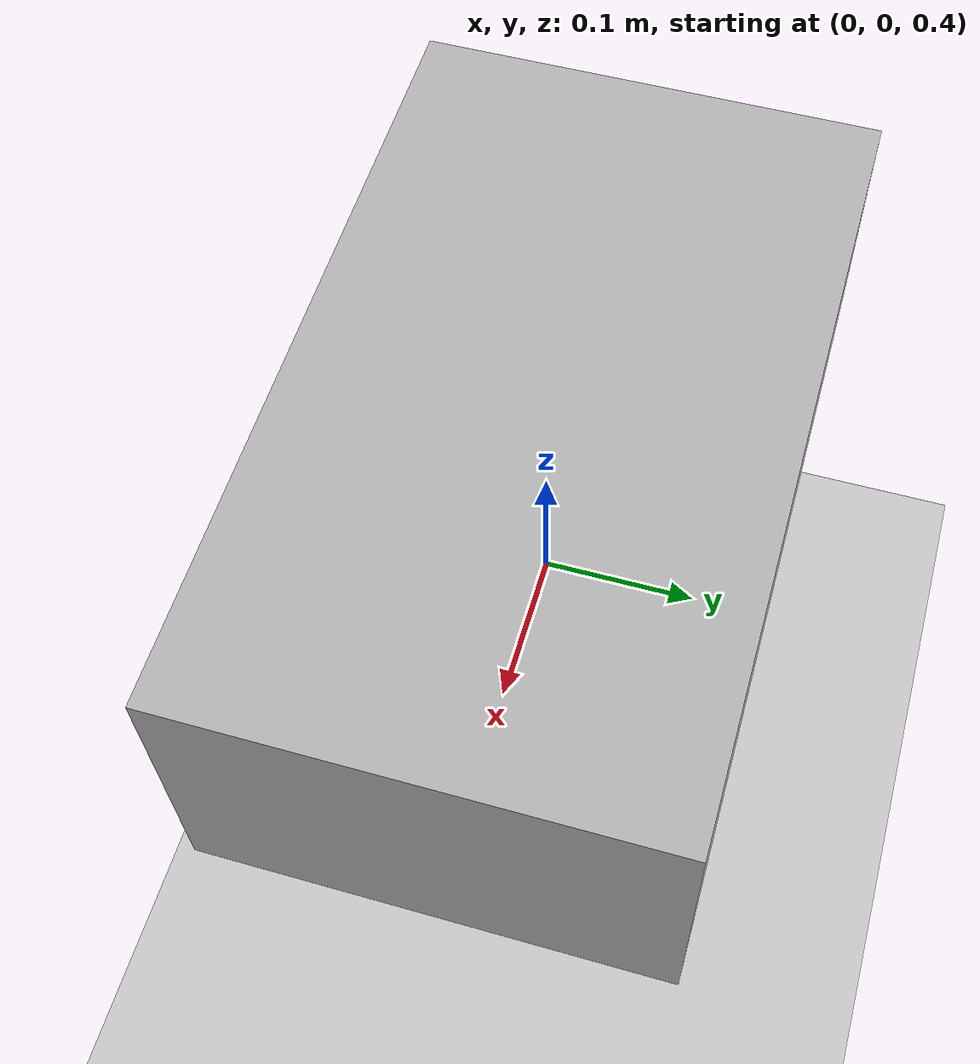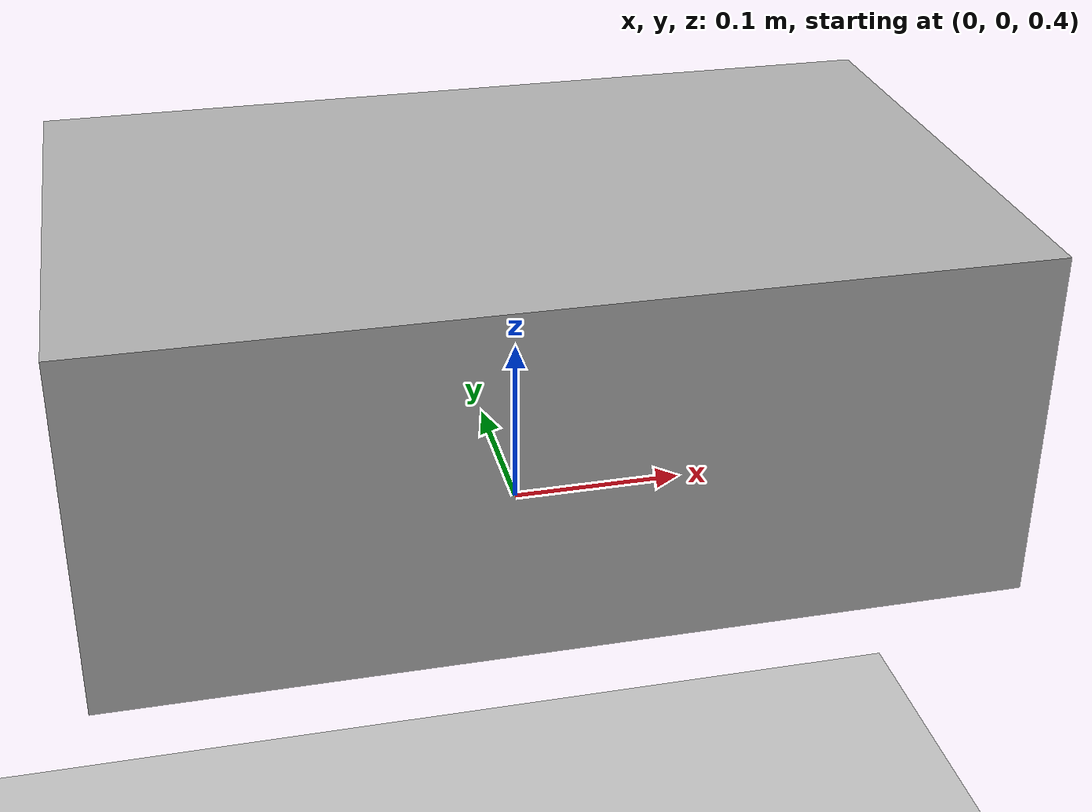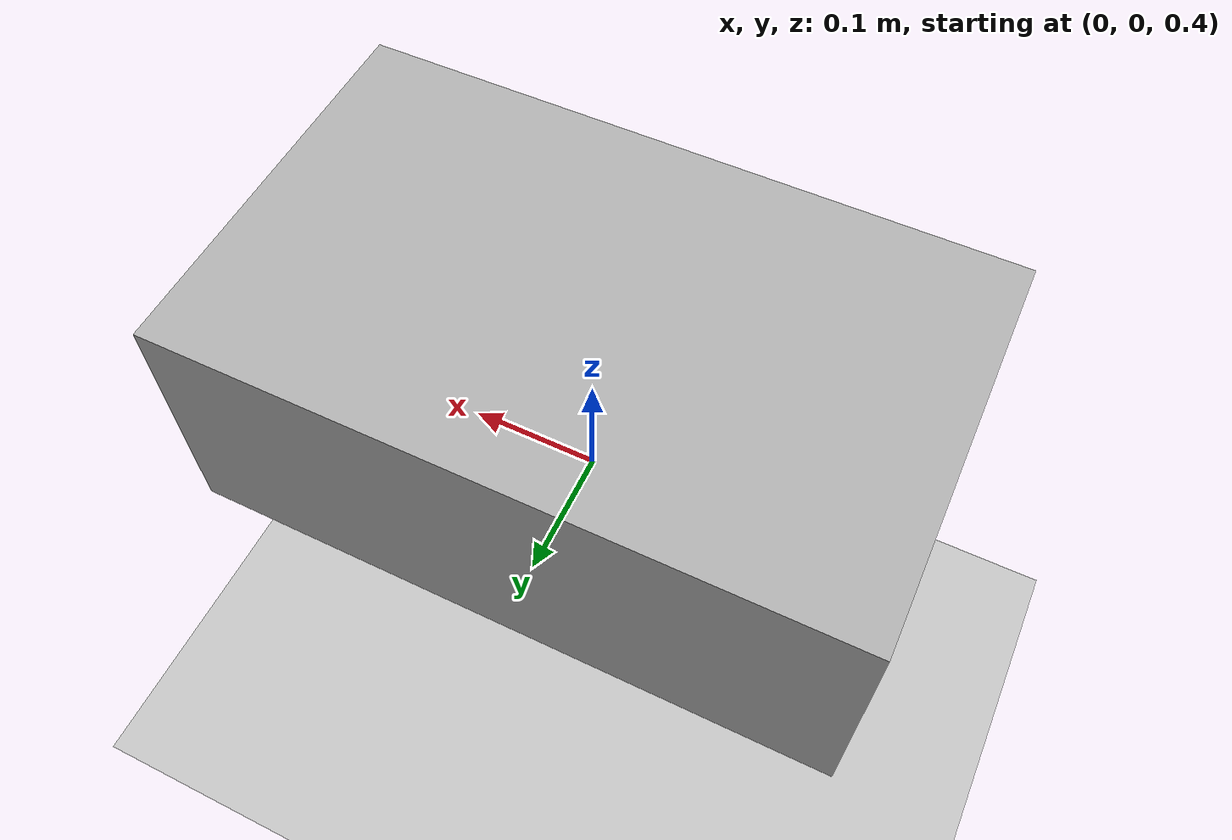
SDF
<?xml version="1.0" ?>
<sdf version="1.10">
  <world name="odom_world">

    <plugin filename="gz-sim-physics-system"
            name="gz::sim::systems::Physics"/>
    <plugin filename="gz-sim-scene-broadcaster-system"
            name="gz::sim::systems::SceneBroadcaster"/>

    <model name="ground_plane">
      <static>true</static>
      <link name="link">
        <collision name="collision">
          <geometry>
            <plane>
              <normal>0 0 1</normal>
              <size>100 100</size>
            </plane>
          </geometry>
        </collision>
        <visual name="visual">
          <geometry>
            <plane>
              <normal>0 0 1</normal>
              <size>100 100</size>
            </plane>
          </geometry>
          <material>
            <ambient>0.8 0.8 0.8 1</ambient>
            <diffuse>0.8 0.8 0.8 1</diffuse>
            <specular>0.8 0.8 0.8 1</specular>
          </material>
        </visual>
      </link>
    </model>

    <model name="robot">
      <pose>0 0 0.5 0 0 0</pose>

      <link name="base_link">
        <inertial>
          <mass>1.0</mass>
          <inertia>
            <ixx>0.1</ixx>
            <iyy>0.1</iyy>
            <izz>0.1</izz>
          </inertia>
        </inertial>

        <collision name="collision">
          <geometry>
            <box>
              <size>0.5 0.3 0.2</size>
            </box>
          </geometry>
        </collision>

        <visual name="visual">
          <geometry>
            <box>
              <size>0.5 0.3 0.2</size>
            </box>
          </geometry>
        </visual>
      </link>

      <plugin filename="gz-sim-odometry-publisher-system"
              name="gz::sim::systems::OdometryPublisher">
        <odom_frame>odom</odom_frame>
        <robot_base_frame>base_link</robot_base_frame>
        <odom_topic>/robot/odometry</odom_topic>
        <odom_publish_frequency>50</odom_publish_frequency>
      </plugin>
    </model>

  </world>
</sdf>
